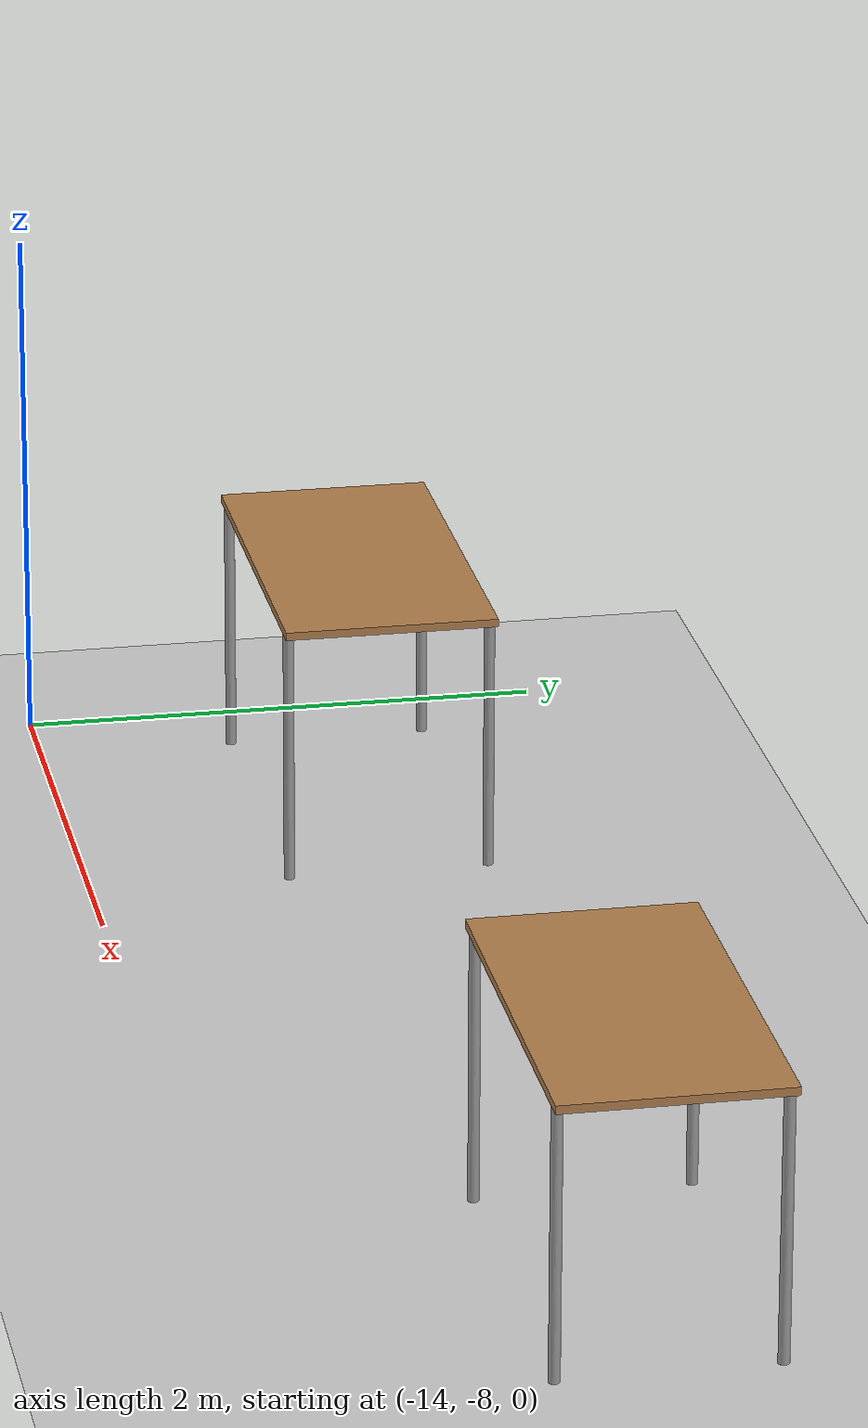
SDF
<sdf version="1.7">
 <world name="default">
  <model name="ground_plane">
   <static>1</static>
   <link name="link1">
    <collision name="collision">
     <geometry><plane><normal>0 0 1</normal><size>100 100</size></plane></geometry>
     <surface>
      <contact><collide_bitmask>65535</collide_bitmask></contact>
      <friction><ode><mu>100</mu><mu2>50</mu2></ode></friction>
     </surface>
    </collision>
    <visual name="visual">
     <cast_shadows>0</cast_shadows>
     <geometry><plane><normal>0 0 1</normal><size>100 100</size></plane></geometry>
     <material>
      <script><uri>file://media/materials/scripts/gazebo.material</uri><name>Gazebo/Grey</name></script>
     </material>
    </visual>
   </link>
  </model>
  <model name="Table_clone_0">
   <static>1</static>
   <link name="Table_clone_0_link">
    <collision name="surface">
     <pose>0 0 1 0 -0 0</pose>
     <geometry><box><size>1.5 0.8 0.03</size></box></geometry>
     <surface><friction><ode><mu>0.6</mu><mu2>0.6</mu2></ode></friction></surface>
    </collision>
    <visual name="visual1">
     <pose>0 0 1 0 -0 0</pose>
     <geometry><box><size>1.5 0.8 0.03</size></box></geometry>
     <material>
      <diffuse>1 1 1 1</diffuse>
      <script><uri>file://media/materials/scripts/gazebo.material</uri><name>Gazebo/Wood</name></script>
      <pbr>
       <metal>
        <albedo_map>https://fuel.ignitionrobotics.org/1.0/openrobotics/models/table/3/files/Table_Diffuse.jpg</albedo_map>
       </metal>
      </pbr>
     </material>
    </visual>
    <collision name="front_left_leg">
     <pose>0.68 0.38 0.5 0 -0 0</pose>
     <geometry><cylinder><radius>0.02</radius><length>1</length></cylinder></geometry>
    </collision>
    <visual name="front_left_leg">
     <pose>0.68 0.38 0.5 0 -0 0</pose>
     <geometry><cylinder><radius>0.02</radius><length>1</length></cylinder></geometry>
     <material>
      <diffuse>0.5 0.5 0.5 1</diffuse>
      <script><uri>file://media/materials/scripts/gazebo.material</uri><name>Gazebo/Grey</name></script>
     </material>
    </visual>
    <collision name="front_right_leg">
     <pose>0.68 -0.38 0.5 0 -0 0</pose>
     <geometry><cylinder><radius>0.02</radius><length>1</length></cylinder></geometry>
    </collision>
    <visual name="front_right_leg">
     <pose>0.68 -0.38 0.5 0 -0 0</pose>
     <geometry><cylinder><radius>0.02</radius><length>1</length></cylinder></geometry>
     <material>
      <diffuse>0.5 0.5 0.5 1</diffuse>
      <script><uri>file://media/materials/scripts/gazebo.material</uri><name>Gazebo/Grey</name></script>
     </material>
    </visual>
    <collision name="back_right_leg">
     <pose>-0.68 -0.38 0.5 0 -0 0</pose>
     <geometry><cylinder><radius>0.02</radius><length>1</length></cylinder></geometry>
    </collision>
    <visual name="back_right_leg">
     <pose>-0.68 -0.38 0.5 0 -0 0</pose>
     <geometry><cylinder><radius>0.02</radius><length>1</length></cylinder></geometry>
     <material>
      <diffuse>0.5 0.5 0.5 1</diffuse>
      <script><uri>file://media/materials/scripts/gazebo.material</uri><name>Gazebo/Grey</name></script>
     </material>
    </visual>
    <collision name="back_left_leg">
     <pose>-0.68 0.38 0.5 0 -0 0</pose>
     <geometry><cylinder><radius>0.02</radius><length>1</length></cylinder></geometry>
    </collision>
    <visual name="back_left_leg">
     <pose>-0.68 0.38 0.5 0 -0 0</pose>
     <geometry><cylinder><radius>0.02</radius><length>1</length></cylinder></geometry>
     <material>
      <diffuse>0.5 0.5 0.5 1</diffuse>
      <script><uri>file://media/materials/scripts/gazebo.material</uri><name>Gazebo/Grey</name></script>
     </material>
    </visual>
   </link>
   <pose>-8.79511 -6.71924 0 0 -0 0</pose>
  </model>
  <model name="Table_clone_1">
   <static>1</static>
   <link name="Table_clone_1_link_dup">
    <collision name="surface">
     <pose>0 0 1 0 -0 0</pose>
     <geometry><box><size>1.5 0.8 0.03</size></box></geometry>
     <surface><friction><ode><mu>0.6</mu><mu2>0.6</mu2></ode></friction></surface>
    </collision>
    <visual name="visual1">
     <pose>0 0 1 0 -0 0</pose>
     <geometry><box><size>1.5 0.8 0.03</size></box></geometry>
     <material>
      <diffuse>1 1 1 1</diffuse>
      <script><uri>file://media/materials/scripts/gazebo.material</uri><name>Gazebo/Wood</name></script>
      <pbr>
       <metal>
        <albedo_map>https://fuel.ignitionrobotics.org/1.0/openrobotics/models/table/3/files/Table_Diffuse.jpg</albedo_map>
       </metal>
      </pbr>
     </material>
    </visual>
    <collision name="front_left_leg">
     <pose>0.68 0.38 0.5 0 -0 0</pose>
     <geometry><cylinder><radius>0.02</radius><length>1</length></cylinder></geometry>
    </collision>
    <visual name="front_left_leg">
     <pose>0.68 0.38 0.5 0 -0 0</pose>
     <geometry><cylinder><radius>0.02</radius><length>1</length></cylinder></geometry>
     <material>
      <diffuse>0.5 0.5 0.5 1</diffuse>
      <script><uri>file://media/materials/scripts/gazebo.material</uri><name>Gazebo/Grey</name></script>
     </material>
    </visual>
    <collision name="front_right_leg">
     <pose>0.68 -0.38 0.5 0 -0 0</pose>
     <geometry><cylinder><radius>0.02</radius><length>1</length></cylinder></geometry>
    </collision>
    <visual name="front_right_leg">
     <pose>0.68 -0.38 0.5 0 -0 0</pose>
     <geometry><cylinder><radius>0.02</radius><length>1</length></cylinder></geometry>
     <material>
      <diffuse>0.5 0.5 0.5 1</diffuse>
      <script><uri>file://media/materials/scripts/gazebo.material</uri><name>Gazebo/Grey</name></script>
     </material>
    </visual>
    <collision name="back_right_leg">
     <pose>-0.68 -0.38 0.5 0 -0 0</pose>
     <geometry><cylinder><radius>0.02</radius><length>1</length></cylinder></geometry>
    </collision>
    <visual name="back_right_leg">
     <pose>-0.68 -0.38 0.5 0 -0 0</pose>
     <geometry><cylinder><radius>0.02</radius><length>1</length></cylinder></geometry>
     <material>
      <diffuse>0.5 0.5 0.5 1</diffuse>
      <script><uri>file://media/materials/scripts/gazebo.material</uri><name>Gazebo/Grey</name></script>
     </material>
    </visual>
    <collision name="back_left_leg">
     <pose>-0.68 0.38 0.5 0 -0 0</pose>
     <geometry><cylinder><radius>0.02</radius><length>1</length></cylinder></geometry>
    </collision>
    <visual name="back_left_leg">
     <pose>-0.68 0.38 0.5 0 -0 0</pose>
     <geometry><cylinder><radius>0.02</radius><length>1</length></cylinder></geometry>
     <material>
      <diffuse>0.5 0.5 0.5 1</diffuse>
      <script><uri>file://media/materials/scripts/gazebo.material</uri><name>Gazebo/Grey</name></script>
     </material>
    </visual>
   </link>
   <pose>-12.9968 -6.86813 0 0 -0 0</pose>
  </model>
 </world>
</sdf>
